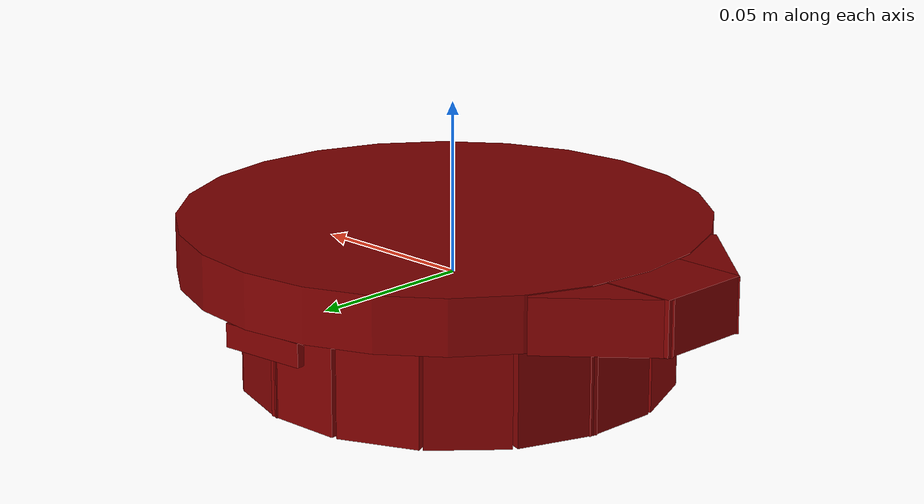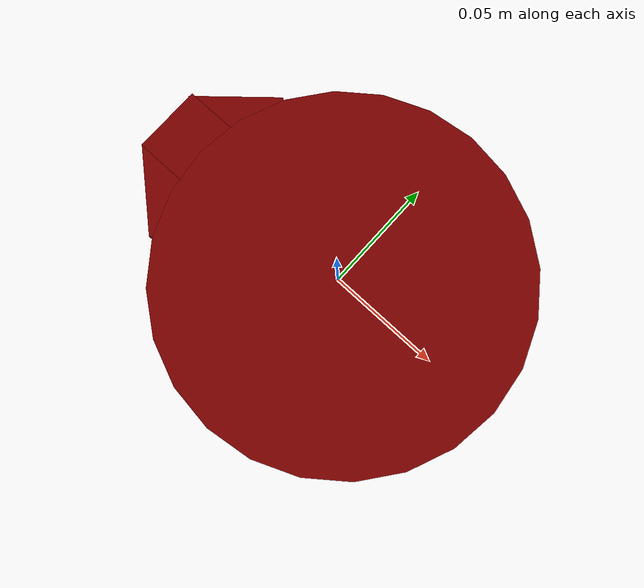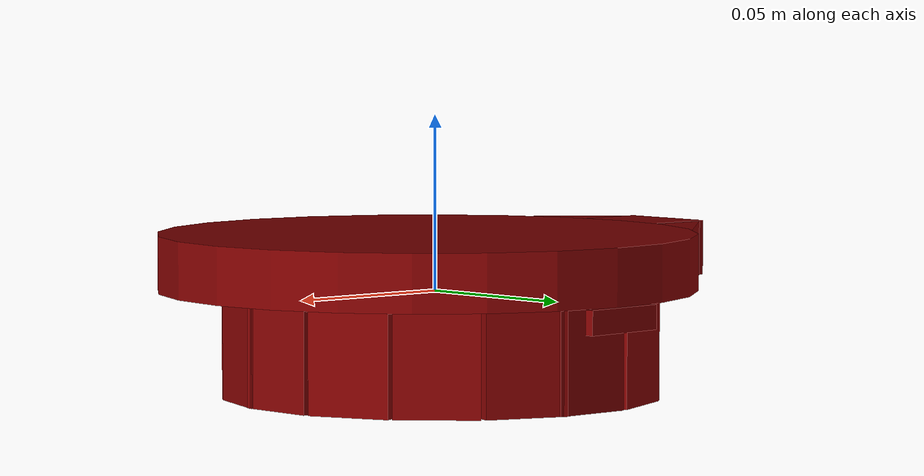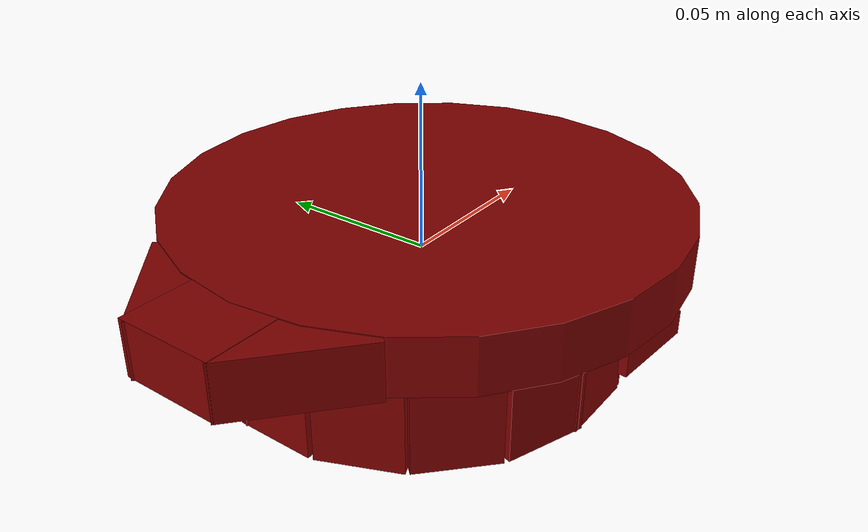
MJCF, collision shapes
<mujoco model="model">
  <option timestep="0.002" gravity="0.0 0.0 -9.81"/>
  <compiler angle="radian"/>
  <asset>
    <texture file="visuals/T_BC001.png" name="lid_material" type="2d"/>
    <material name="lid_material" rgba="1 1 1 1.0" texture="lid_material" shininess="0.4472135901451111" specular="0.3103448502657381"/>
    <mesh file="visuals/lid.obj" name="lid_vis"/>
  </asset>
  <default>
    <default class="visual">
      <geom conaffinity="0" contype="0" group="1" type="mesh"/>
    </default>
    <default class="collision">
      <geom group="0" rgba="0.5 0 0 0.5"/>
    </default>
    <default class="spawn">
      <geom group="0" rgba="1 1 1 0.5" contype="0" conaffinity="0"/>
      <site group="0" rgba="1 1 1 0.5"/>
    </default>
    <default class="region">
      <geom group="1" conaffinity="0" contype="0" rgba="0 1 0 0"/>
    </default>
  </default>
  <worldbody>
    <body>
      <body name="object">
        <geom mesh="lid_vis" type="mesh" solimp="0.998 0.998 0.001" solref="0.001 1" friction="0.95 0.3 0.1" class="visual" material="lid_material"/>
        <geom class="collision" type="cylinder" pos="0.003093375028388433 8.22150913279071e-06 0.008591769587652454" size="0.07686559855937958 0.00810125283896923" quat="1.0 0.0 0.0 0.0" density="1000.0"/>
        <geom class="collision" type="box" pos="-0.08064679497161156 0.0005274515091327906 0.008559049587652467" size="0.012614632025361061 0.014571985229849815 0.00804836768656969" quat="1.0 0.0 0.0 0.0" density="1000.0"/>
        <geom class="collision" type="box" pos="-0.002331094971611568 -0.05801802849086721 -0.014958690412347542" size="0.012062345631420612 0.003668746445327997 0.015116953290998936" quat="1.0 0.0 0.0 0.0" density="1000.0"/>
        <geom class="collision" type="box" pos="-0.002331094971611568 0.05809654150913279 -0.014958690412347542" size="0.012062350288033485 0.003668747842311859 0.015116958878934383" quat="1.0 0.0 0.0 0.0" density="1000.0"/>
        <geom class="collision" type="box" pos="0.05572619502838844 3.926150913279025e-05 -0.014958690412347542" size="0.003668751334771514 0.01206235308200121 0.015116965398192406" quat="1.0 0.0 0.0 0.0" density="1000.0"/>
        <geom class="collision" type="box" pos="-0.060388374971611564 3.925150913279031e-05 -0.014958690412347542" size="0.003668752498924732 0.012062358669936657 0.015116971917450428" quat="1.0 0.0 0.0 0.0" density="1000.0"/>
        <geom class="collision" type="box" pos="-0.05558904497161157 -0.023074378490867208 -0.014958690412347542" size="0.012062367051839828 0.0036687529645860195 0.01511697843670845" quat="0.8360974192619324 0.0 -0.0 -0.5485810041427612" density="1000.0"/>
        <geom class="collision" type="box" pos="0.05092685502838843 0.02315289150913279 -0.014958690412347542" size="0.012062367051839828 0.0036687529645860195 0.01511697843670845" quat="0.8360974192619324 0.0 -0.0 -0.5485810041427612" density="1000.0"/>
        <geom class="collision" type="box" pos="-0.025444724971611564 0.053297201509132794 -0.014958690412347542" size="0.012062367051839828 0.0036687529645860195 0.01511697843670845" quat="0.9791154861450195 0.0 0.0 0.20330475270748138" density="1000.0"/>
        <geom class="collision" type="box" pos="0.020782535028388435 -0.05321868849086721 -0.014958690412347542" size="0.012062367051839828 0.0036687529645860195 0.01511697843670845" quat="0.9791154861450195 0.0 0.0 0.20330475270748138" density="1000.0"/>
        <geom class="collision" type="box" pos="0.039849905028388435 -0.03985324849086721 -0.014958690412347542" size="0.012062367051839828 0.0036687529645860195 0.01511697843670845" quat="0.9184560775756836 0.0 0.0 0.39552295207977295" density="1000.0"/>
        <geom class="collision" type="box" pos="-0.044512094971611564 0.03993175150913279 -0.014958690412347542" size="0.012062367051839828 0.0036687529645860195 0.01511697843670845" quat="0.9184560775756836 0.0 0.0 0.39552295207977295" density="1000.0"/>
        <geom class="collision" type="box" pos="0.03756140502838844 0.04222026150913279 -0.014958690412347542" size="0.012062367051839828 0.0036687529645860195 0.01511697843670845" quat="0.9291235208511353 0.0 -0.0 -0.36976948380470276" density="1000.0"/>
        <geom class="collision" type="box" pos="-0.042223594971611565 -0.04214174849086721 -0.014958690412347542" size="0.012062367051839828 0.0036687529645860195 0.01511697843670845" quat="0.9291235208511353 0.0 -0.0 -0.36976948380470276" density="1000.0"/>
        <geom class="collision" type="box" pos="-0.02218785497161157 -0.05451674849086721 -0.014958690412347542" size="0.012062367051839828 0.0036687529645860195 0.01511697843670845" quat="0.9848077297210693 0.0 -0.0 -0.17364826798439026" density="1000.0"/>
        <geom class="collision" type="box" pos="0.017525675028388435 0.05459526150913279 -0.014958690412347542" size="0.012062367051839828 0.0036687529645860195 0.01511697843670845" quat="0.9848077297210693 0.0 -0.0 -0.17364826798439026" density="1000.0"/>
        <geom class="collision" type="box" pos="-0.05688709497161157 0.01989602150913279 -0.014958690412347542" size="0.01206236518919468 0.0036687529645860195 0.01511697843670845" quat="0.8191519975662231 0.0 0.0 0.5735765099525452" density="1000.0"/>
        <geom class="collision" type="box" pos="0.05222490502838843 -0.01981751849086721 -0.014958690412347542" size="0.01206236518919468 0.0036687529645860195 0.01511697843670845" quat="0.8191519975662231 0.0 0.0 0.5735765099525452" density="1000.0"/>
        <geom class="collision" type="box" pos="-0.0017834049716115678 -0.0738236084908672 -0.003302560412347527" size="0.013126359321177006 0.0012383818393573165 0.003460837062448263" quat="0.9991809725761414 0.0 -0.0 -0.04046505689620972" density="1000.0"/>
        <geom class="collision" type="box" pos="-0.07098908497161156 0.016517771509132792 0.008366409587652474" size="0.01261463388800621 0.019166914746165276 0.008048282004892826" quat="0.9105595946311951 0.0 -0.0 -0.4133777916431427" density="1000.0"/>
        <geom class="collision" type="box" pos="-0.07092005497161157 -0.01677871849086721 0.008366409587652474" size="0.01261463388800621 0.019166914746165276 0.008048282004892826" quat="0.9105597138404846 0.0 0.0 0.4133776128292084" density="1000.0"/>
        <geom class="collision" type="box" pos="-0.001399274971611568 0.07388006150913279 -0.003302560412347527" size="0.013183570466935635 0.0012383820721879601 0.003460837062448263" quat="0.9993478655815125 0.0 0.0 0.0361081138253212" density="1000.0"/>
        <geom class="region" name="reg_main" density="0" type="box" pos="-0.006973850000000004 -1.7000000000072513e-07 -0.006443890000000001" size="0.0864105 0.07534350000000001 0.023"/>
      </body>
    </body>
  </worldbody>
</mujoco>
